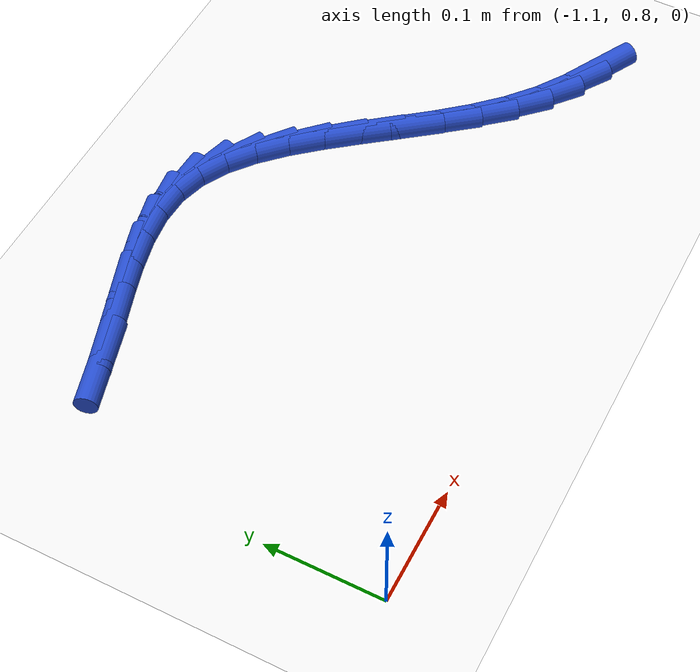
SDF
<sdf version="1.6">
 <world name="default">
  <model name="ground_plane">
   <static>1</static>
   <link name="link">
    <collision name="collision">
     <geometry><plane><normal>0 0 1</normal><size>100 100</size></plane></geometry>
     <surface><friction><ode><mu>100</mu><mu2>50</mu2></ode></friction></surface>
    </collision>
    <visual name="visual">
     <cast_shadows>0</cast_shadows>
     <geometry><plane><normal>0 0 1</normal><size>100 100</size></plane></geometry>
     <material>
      <script><uri>file://media/materials/scripts/gazebo.material</uri><name>Gazebo/WhiteGlow</name></script>
     </material>
    </visual>
   </link>
  </model>
  <model name="line">
   <link name="link_37">
    <pose>-0.5612627579534817 0.8671229118037881 0.01 0 1.57 -0.49182471932828387</pose>
    <collision name="collision">
     <geometry><cylinder><radius>0.01</radius><length>0.08</length></cylinder></geometry>
    </collision>
    <visual name="visual">
     <material>
      <script><name>Gazebo/Blue</name><uri>file://media/materials/scripts/gazebo.material</uri></script>
     </material>
     <geometry><cylinder><radius>0.01</radius><length>0.08</length></cylinder></geometry>
    </visual>
   </link>
   <link name="link_38">
    <pose>-0.5876564661966422 0.8812629263499128 0.01 0 1.57 -0.5865804642303438</pose>
    <collision name="collision">
     <geometry><cylinder><radius>0.01</radius><length>0.08</length></cylinder></geometry>
    </collision>
    <visual name="visual">
     <material>
      <script><name>Gazebo/Blue</name><uri>file://media/materials/scripts/gazebo.material</uri></script>
     </material>
     <geometry><cylinder><radius>0.01</radius><length>0.08</length></cylinder></geometry>
    </visual>
   </link>
   <link name="link_39">
    <pose>-0.6128224090543692 0.8979885746087894 0.01 0 1.57 -0.6993807031024076</pose>
    <collision name="collision">
     <geometry><cylinder><radius>0.01</radius><length>0.08</length></cylinder></geometry>
    </collision>
    <visual name="visual">
     <material>
      <script><name>Gazebo/Blue</name><uri>file://media/materials/scripts/gazebo.material</uri></script>
     </material>
     <geometry><cylinder><radius>0.01</radius><length>0.08</length></cylinder></geometry>
    </visual>
   </link>
   <link name="link_40">
    <pose>-0.6364909742992195 0.917899288267042 0.01 0 1.57 -0.7989283197847066</pose>
    <collision name="collision">
     <geometry><cylinder><radius>0.01</radius><length>0.08</length></cylinder></geometry>
    </collision>
    <visual name="visual">
     <material>
      <script><name>Gazebo/Blue</name><uri>file://media/materials/scripts/gazebo.material</uri></script>
     </material>
     <geometry><cylinder><radius>0.01</radius><length>0.08</length></cylinder></geometry>
    </visual>
   </link>
   <link name="link_41">
    <pose>-0.6587267636403098 0.9407450756144885 0.01 0 1.57 -0.8661080932153845</pose>
    <collision name="collision">
     <geometry><cylinder><radius>0.01</radius><length>0.08</length></cylinder></geometry>
    </collision>
    <visual name="visual">
     <material>
      <script><name>Gazebo/Blue</name><uri>file://media/materials/scripts/gazebo.material</uri></script>
     </material>
     <geometry><cylinder><radius>0.01</radius><length>0.08</length></cylinder></geometry>
    </visual>
   </link>
   <link name="link_42">
    <pose>-0.6798607875677312 0.9655988521362451 0.01 0 1.57 -0.9046314336954666</pose>
    <collision name="collision">
     <geometry><cylinder><radius>0.01</radius><length>0.08</length></cylinder></geometry>
    </collision>
    <visual name="visual">
     <material>
      <script><name>Gazebo/Blue</name><uri>file://media/materials/scripts/gazebo.material</uri></script>
     </material>
     <geometry><cylinder><radius>0.01</radius><length>0.08</length></cylinder></geometry>
    </visual>
   </link>
   <link name="link_43">
    <pose>-0.7002314583482774 0.9915147212883009 0.01 0 1.57 -0.917008511958578</pose>
    <collision name="collision">
     <geometry><cylinder><radius>0.01</radius><length>0.08</length></cylinder></geometry>
    </collision>
    <visual name="visual">
     <material>
      <script><name>Gazebo/Blue</name><uri>file://media/materials/scripts/gazebo.material</uri></script>
     </material>
     <geometry><cylinder><radius>0.01</radius><length>0.08</length></cylinder></geometry>
    </visual>
   </link>
   <link name="link_44">
    <pose>-0.7201771882487424 1.017546786526646 0.01 0 1.57 -0.9034218260897235</pose>
    <collision name="collision">
     <geometry><cylinder><radius>0.01</radius><length>0.08</length></cylinder></geometry>
    </collision>
    <visual name="visual">
     <material>
      <script><name>Gazebo/Blue</name><uri>file://media/materials/scripts/gazebo.material</uri></script>
     </material>
     <geometry><cylinder><radius>0.01</radius><length>0.08</length></cylinder></geometry>
    </visual>
   </link>
   <link name="link_45">
    <pose>-0.7400363895359203 1.0427491513072698 0.01 0 1.57 -0.8614077679691307</pose>
    <collision name="collision">
     <geometry><cylinder><radius>0.01</radius><length>0.08</length></cylinder></geometry>
    </collision>
    <visual name="visual">
     <material>
      <script><name>Gazebo/Blue</name><uri>file://media/materials/scripts/gazebo.material</uri></script>
     </material>
     <geometry><cylinder><radius>0.01</radius><length>0.08</length></cylinder></geometry>
    </visual>
   </link>
   <link name="link_46">
    <pose>-0.760147474476605 1.0661759190861624 0.01 0 1.57 -0.7854921910880401</pose>
    <collision name="collision">
     <geometry><cylinder><radius>0.01</radius><length>0.08</length></cylinder></geometry>
    </collision>
    <visual name="visual">
     <material>
      <script><name>Gazebo/Blue</name><uri>file://media/materials/scripts/gazebo.material</uri></script>
     </material>
     <geometry><cylinder><radius>0.01</radius><length>0.08</length></cylinder></geometry>
    </visual>
   </link>
   <link name="link_47">
    <pose>-0.7808488553375901 1.0868811933193125 0.01 0 1.57 -0.6671919051729979</pose>
    <collision name="collision">
     <geometry><cylinder><radius>0.01</radius><length>0.08</length></cylinder></geometry>
    </collision>
    <visual name="visual">
     <material>
      <script><name>Gazebo/Blue</name><uri>file://media/materials/scripts/gazebo.material</uri></script>
     </material>
     <geometry><cylinder><radius>0.01</radius><length>0.08</length></cylinder></geometry>
    </visual>
   </link>
   <link name="link_48">
    <pose>-0.8024789443856698 1.1039190774627106 0.01 0 1.57 -0.4971633687467852</pose>
    <collision name="collision">
     <geometry><cylinder><radius>0.01</radius><length>0.08</length></cylinder></geometry>
    </collision>
    <visual name="visual">
     <material>
      <script><name>Gazebo/Blue</name><uri>file://media/materials/scripts/gazebo.material</uri></script>
     </material>
     <geometry><cylinder><radius>0.01</radius><length>0.08</length></cylinder></geometry>
    </visual>
   </link>
   <link name="link_49">
    <pose>-0.8253761538876374 1.1163436749723457 0.01 0 1.57 -0.27399471094471256</pose>
    <collision name="collision">
     <geometry><cylinder><radius>0.01</radius><length>0.08</length></cylinder></geometry>
    </collision>
    <visual name="visual">
     <material>
      <script><name>Gazebo/Blue</name><uri>file://media/materials/scripts/gazebo.material</uri></script>
     </material>
     <geometry><cylinder><radius>0.01</radius><length>0.08</length></cylinder></geometry>
    </visual>
   </link>
   <link name="link_50">
    <pose>-0.8498733428551785 1.1232289432125269 0.01 0 1.57 -0.04825395189657477</pose>
    <collision name="collision">
     <geometry><cylinder><radius>0.01</radius><length>0.08</length></cylinder></geometry>
    </collision>
    <visual name="visual">
     <material>
      <script><name>Gazebo/Blue</name><uri>file://media/materials/scripts/gazebo.material</uri></script>
     </material>
     <geometry><cylinder><radius>0.01</radius><length>0.08</length></cylinder></geometry>
    </visual>
   </link>
   <link name="link_51">
    <pose>-0.8760670094472489 1.1244938730654117 0.01 0 1.57 0.1185126245627761</pose>
    <collision name="collision">
     <geometry><cylinder><radius>0.01</radius><length>0.08</length></cylinder></geometry>
    </collision>
    <visual name="visual">
     <material>
      <script><name>Gazebo/Blue</name><uri>file://media/materials/scripts/gazebo.material</uri></script>
     </material>
     <geometry><cylinder><radius>0.01</radius><length>0.08</length></cylinder></geometry>
    </visual>
   </link>
   <link name="link_52">
    <pose>-0.9037342088258361 1.1211995228763845 0.01 0 1.57 0.2282279077582263</pose>
    <collision name="collision">
     <geometry><cylinder><radius>0.01</radius><length>0.08</length></cylinder></geometry>
    </collision>
    <visual name="visual">
     <material>
      <script><name>Gazebo/Blue</name><uri>file://media/materials/scripts/gazebo.material</uri></script>
     </material>
     <geometry><cylinder><radius>0.01</radius><length>0.08</length></cylinder></geometry>
    </visual>
   </link>
   <link name="link_53">
    <pose>-0.9326293524129078 1.1144879065258284 0.01 0 1.57 0.2921818875425154</pose>
    <collision name="collision">
     <geometry><cylinder><radius>0.01</radius><length>0.08</length></cylinder></geometry>
    </collision>
    <visual name="visual">
     <material>
      <script><name>Gazebo/Blue</name><uri>file://media/materials/scripts/gazebo.material</uri></script>
     </material>
     <geometry><cylinder><radius>0.01</radius><length>0.08</length></cylinder></geometry>
    </visual>
   </link>
   <link name="link_54">
    <pose>-0.9625068516304323 1.1055010378941248 0.01 0 1.57 0.31925999525281823</pose>
    <collision name="collision">
     <geometry><cylinder><radius>0.01</radius><length>0.08</length></cylinder></geometry>
    </collision>
    <visual name="visual">
     <material>
      <script><name>Gazebo/Blue</name><uri>file://media/materials/scripts/gazebo.material</uri></script>
     </material>
     <geometry><cylinder><radius>0.01</radius><length>0.08</length></cylinder></geometry>
    </visual>
   </link>
   <link name="link_55">
    <pose>-0.9931211179003775 1.0953809308616567 0.01 0 1.57 0.3142918558554758</pose>
    <collision name="collision">
     <geometry><cylinder><radius>0.01</radius><length>0.08</length></cylinder></geometry>
    </collision>
    <visual name="visual">
     <material>
      <script><name>Gazebo/Blue</name><uri>file://media/materials/scripts/gazebo.material</uri></script>
     </material>
     <geometry><cylinder><radius>0.01</radius><length>0.08</length></cylinder></geometry>
    </visual>
   </link>
   <link name="link_56">
    <pose>-1.0242265626447122 1.0852695993088064 0.01 0 1.57 0.2783911840773198</pose>
    <collision name="collision">
     <geometry><cylinder><radius>0.01</radius><length>0.08</length></cylinder></geometry>
    </collision>
    <visual name="visual">
     <material>
      <script><name>Gazebo/Blue</name><uri>file://media/materials/scripts/gazebo.material</uri></script>
     </material>
     <geometry><cylinder><radius>0.01</radius><length>0.08</length></cylinder></geometry>
    </visual>
   </link>
  </model>
 </world>
</sdf>
